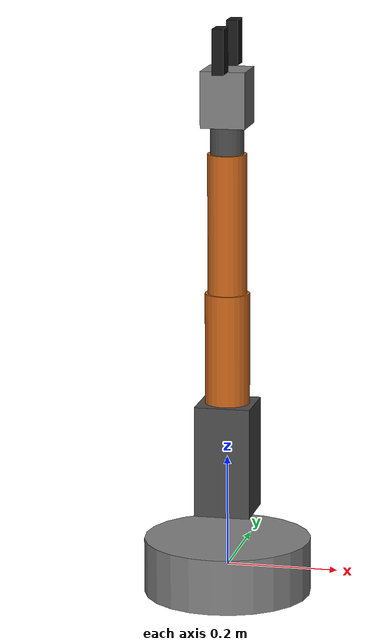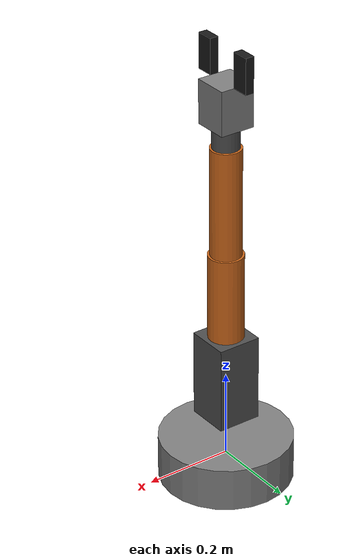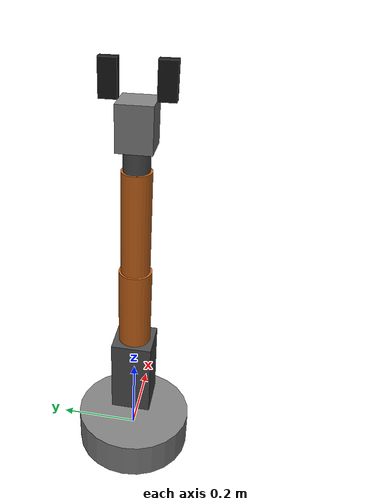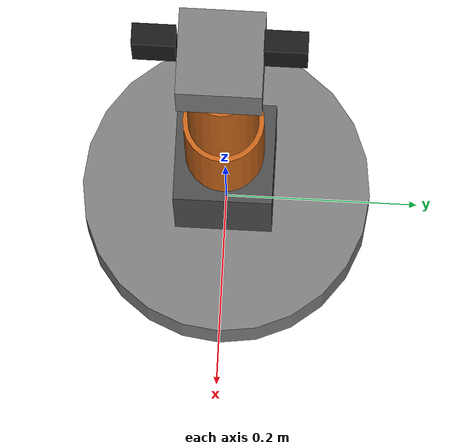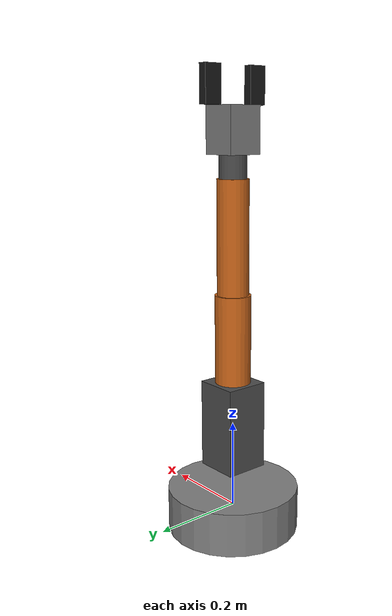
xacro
<?xml version="1.0"?>
<robot xmlns:xacro="http://www.ros.org/wiki/xacro" name="robotic_arm">

  <!-- Fixed base for simulation spawn -->
  <link name="world"/>
  <joint name="world_fixed" type="fixed">
    <parent link="world"/>
    <child link="base_link"/>
    <origin xyz="0 0 0" rpy="0 0 0"/>
  </joint>

  <link name="base_link">
    <visual>
      <geometry><cylinder length="0.1" radius="0.15"/></geometry>
      <material name="grey"><color rgba="0.5 0.5 0.5 1"/></material>
    </visual>
    <collision>
      <geometry><cylinder length="0.1" radius="0.15"/></geometry>
    </collision>
    <inertial>
      <mass value="5.0"/>
      <inertia ixx="0.01" ixy="0" ixz="0" iyy="0.01" iyz="0" izz="0.01"/>
    </inertial>
  </link>

  <link name="shoulder_pitch_link">
    <visual>
      <origin xyz="0 0 0.1" rpy="0 0 0"/>
      <geometry><box size="0.1 0.1 0.2"/></geometry>
      <material name="dark_grey"><color rgba="0.3 0.3 0.3 1"/></material>
    </visual>
    <collision>
      <origin xyz="0 0 0.1" rpy="0 0 0"/>
      <geometry><box size="0.1 0.1 0.2"/></geometry>
    </collision>
    <inertial>
      <mass value="2.0"/>
      <origin xyz="0 0 0.1" rpy="0 0 0"/>
      <inertia ixx="0.005" ixy="0" ixz="0" iyy="0.005" iyz="0" izz="0.005"/>
    </inertial>
  </link>

  <link name="upper_arm_link">
    <visual>
      <origin xyz="0 0 0.15" rpy="0 0 0"/>
      <geometry><cylinder length="0.3" radius="0.04"/></geometry>
      <material name="orange"><color rgba="0.8 0.4 0.1 1"/></material>
    </visual>
    <collision>
      <origin xyz="0 0 0.15" rpy="0 0 0"/>
      <geometry><cylinder length="0.3" radius="0.04"/></geometry>
    </collision>
    <inertial>
      <mass value="3.0"/>
      <origin xyz="0 0 0.15" rpy="0 0 0"/>
      <inertia ixx="0.01" ixy="0" ixz="0" iyy="0.01" iyz="0" izz="0.01"/>
    </inertial>
  </link>

  <link name="forearm_link">
    <visual>
      <origin xyz="0 0 0.125" rpy="0 0 0"/>
      <geometry><cylinder length="0.25" radius="0.035"/></geometry>
      <material name="orange"><color rgba="0.8 0.4 0.1 1"/></material>
    </visual>
    <collision>
      <origin xyz="0 0 0.125" rpy="0 0 0"/>
      <geometry><cylinder length="0.25" radius="0.035"/></geometry>
    </collision>
    <inertial>
      <mass value="2.0"/>
      <origin xyz="0 0 0.125" rpy="0 0 0"/>
      <inertia ixx="0.008" ixy="0" ixz="0" iyy="0.008" iyz="0" izz="0.008"/>
    </inertial>
  </link>

  <link name="wrist_link">
    <visual>
      <origin xyz="0 0 0.05" rpy="0 0 0"/>
      <geometry><cylinder length="0.1" radius="0.03"/></geometry>
      <material name="dark_grey"><color rgba="0.3 0.3 0.3 1"/></material>
    </visual>
    <collision>
      <origin xyz="0 0 0.05" rpy="0 0 0"/>
      <geometry><cylinder length="0.1" radius="0.03"/></geometry>
    </collision>
    <inertial>
      <mass value="0.5"/>
      <origin xyz="0 0 0.05" rpy="0 0 0"/>
      <inertia ixx="0.002" ixy="0" ixz="0" iyy="0.002" iyz="0" izz="0.002"/>
    </inertial>
  </link>

  <link name="gripper_base_link">
    <visual>
      <geometry><box size="0.08 0.08 0.1"/></geometry>
      <material name="grey"><color rgba="0.5 0.5 0.5 1"/></material>
    </visual>
    <collision>
      <geometry><box size="0.08 0.08 0.1"/></geometry>
    </collision>
    <inertial>
      <mass value="0.5"/>
      <inertia ixx="0.001" ixy="0" ixz="0" iyy="0.001" iyz="0" izz="0.001"/>
    </inertial>
  </link>

  <link name="gripper_left_link">
    <visual>
      <origin xyz="0 0.02 0.04" rpy="0 0 0"/>
      <geometry><box size="0.02 0.04 0.08"/></geometry>
      <material name="black"><color rgba="0.1 0.1 0.1 1"/></material>
    </visual>
    <collision>
      <origin xyz="0 0.02 0.04" rpy="0 0 0"/>
      <geometry><box size="0.02 0.04 0.08"/></geometry>
    </collision>
    <inertial>
      <mass value="0.1"/>
      <origin xyz="0 0.02 0.04" rpy="0 0 0"/>
      <inertia ixx="0.0001" ixy="0" ixz="0" iyy="0.0001" iyz="0" izz="0.0001"/>
    </inertial>
  </link>

  <link name="gripper_right_link">
    <visual>
      <origin xyz="0 -0.02 0.04" rpy="0 0 0"/>
      <geometry><box size="0.02 0.04 0.08"/></geometry>
      <material name="black"><color rgba="0.1 0.1 0.1 1"/></material>
    </visual>
    <collision>
      <origin xyz="0 -0.02 0.04" rpy="0 0 0"/>
      <geometry><box size="0.02 0.04 0.08"/></geometry>
    </collision>
    <inertial>
      <mass value="0.1"/>
      <origin xyz="0 -0.02 0.04" rpy="0 0 0"/>
      <inertia ixx="0.0001" ixy="0" ixz="0" iyy="0.0001" iyz="0" izz="0.0001"/>
    </inertial>
  </link>

  <!-- Revolute base (position-controllable in sim) -->
  <joint name="base_rotator" type="revolute">
    <parent link="base_link"/>
    <child link="shoulder_pitch_link"/>
    <origin xyz="0 0 0.1" rpy="0 0 0"/>
    <axis xyz="0 0 1"/>
    <limit lower="-3.14159" upper="3.14159" effort="50" velocity="3.14"/>
    <dynamics damping="0.7" friction="0.5"/>
  </joint>

  <joint name="shoulder_pitch" type="revolute">
    <parent link="shoulder_pitch_link"/>
    <child link="upper_arm_link"/>
    <origin xyz="0 0 0.1" rpy="0 0 0"/>
    <axis xyz="0 1 0"/>
    <limit lower="-1.57" upper="1.57" effort="50" velocity="3.14"/>
    <dynamics damping="0.7" friction="0.5"/>
  </joint>

  <joint name="elbow_pitch" type="revolute">
    <parent link="upper_arm_link"/>
    <child link="forearm_link"/>
    <origin xyz="0 0 0.3" rpy="0 0 0"/>
    <axis xyz="0 1 0"/>
    <limit lower="-2.35" upper="2.35" effort="30" velocity="3.14"/>
    <dynamics damping="0.7" friction="0.5"/>
  </joint>

  <joint name="wrist_pitch" type="revolute">
    <parent link="forearm_link"/>
    <child link="wrist_link"/>
    <origin xyz="0 0 0.25" rpy="0 0 0"/>
    <axis xyz="0 1 0"/>
    <limit lower="-3.14" upper="3.14" effort="10" velocity="6.28"/>
    <dynamics damping="0.5" friction="0.3"/>
  </joint>

  <joint name="wrist_roll" type="revolute">
    <parent link="wrist_link"/>
    <child link="gripper_base_link"/>
    <origin xyz="0 0 0.1" rpy="0 0 0"/>
    <axis xyz="1 0 0"/>
    <limit lower="-3.14" upper="3.14" effort="5" velocity="6.28"/>
    <dynamics damping="0.5" friction="0.3"/>
  </joint>

  <joint name="gripper_joint" type="prismatic">
    <parent link="gripper_base_link"/>
    <child link="gripper_left_link"/>
    <origin xyz="0 0.04 0.05" rpy="0 0 0"/>
    <axis xyz="0 1 0"/>
    <limit lower="0" upper="0.04" effort="20" velocity="0.5"/>
    <dynamics damping="0.9" friction="0.5"/>
  </joint>

  <joint name="gripper_joint_right" type="prismatic">
    <parent link="gripper_base_link"/>
    <child link="gripper_right_link"/>
    <origin xyz="0 -0.04 0.05" rpy="0 0 0"/>
    <axis xyz="0 -1 0"/>
    <limit lower="0" upper="0.04" effort="20" velocity="0.5"/>
    <dynamics damping="0.9" friction="0.5"/>
  </joint>

  <!-- Gazebo Harmonic: joint state + per-joint position control (no ros2_control apt required) -->
  <gazebo>
    <plugin filename="gz-sim-joint-state-publisher-system"
            name="gz::sim::systems::JointStatePublisher"/>
  </gazebo>

  <xacro:macro name="joint_position_controller" params="joint_name">
    <gazebo>
      <plugin filename="gz-sim-joint-position-controller-system"
              name="gz::sim::systems::JointPositionController">
        <joint_name>${joint_name}</joint_name>
        <p_gain>4.0</p_gain>
        <i_gain>0.1</i_gain>
        <d_gain>0.5</d_gain>
      </plugin>
    </gazebo>
  </xacro:macro>

  <xacro:joint_position_controller joint_name="base_rotator"/>
  <xacro:joint_position_controller joint_name="shoulder_pitch"/>
  <xacro:joint_position_controller joint_name="elbow_pitch"/>
  <xacro:joint_position_controller joint_name="wrist_pitch"/>
  <xacro:joint_position_controller joint_name="wrist_roll"/>
  <xacro:joint_position_controller joint_name="gripper_joint"/>
  <xacro:joint_position_controller joint_name="gripper_joint_right"/>

  <gazebo reference="base_link"><material>Gazebo/DarkGrey</material></gazebo>
    <gazebo reference="shoulder_pitch_link"><material>Gazebo/DarkGrey</material></gazebo>
    <gazebo reference="upper_arm_link"><material>Gazebo/Orange</material></gazebo>
    <gazebo reference="forearm_link"><material>Gazebo/Orange</material></gazebo>
    <gazebo reference="wrist_link"><material>Gazebo/DarkGrey</material></gazebo>
    <gazebo reference="gripper_base_link"><material>Gazebo/Grey</material></gazebo>
    <gazebo reference="gripper_left_link"><material>Gazebo/Black</material></gazebo>
    <gazebo reference="gripper_right_link"><material>Gazebo/Black</material></gazebo>

</robot>
